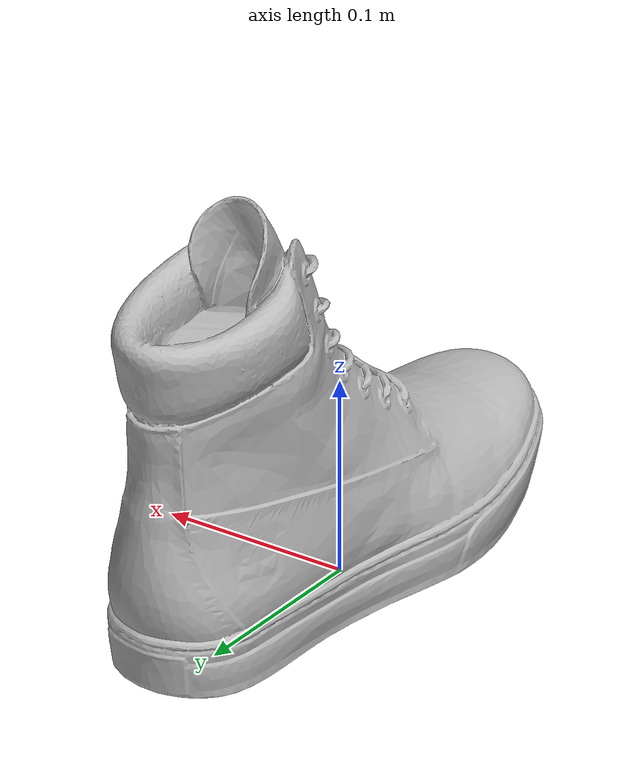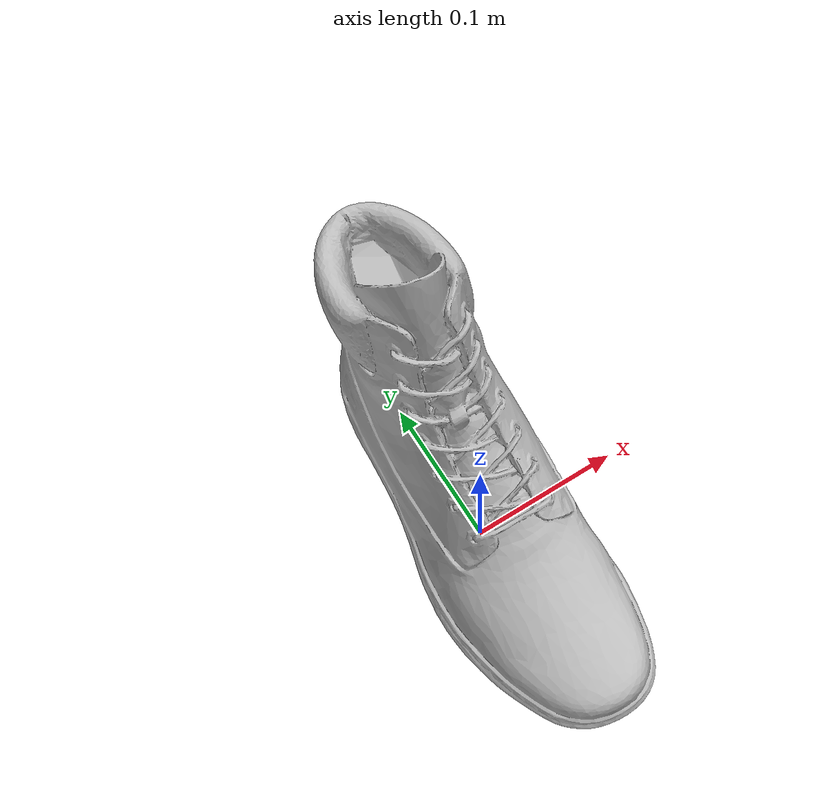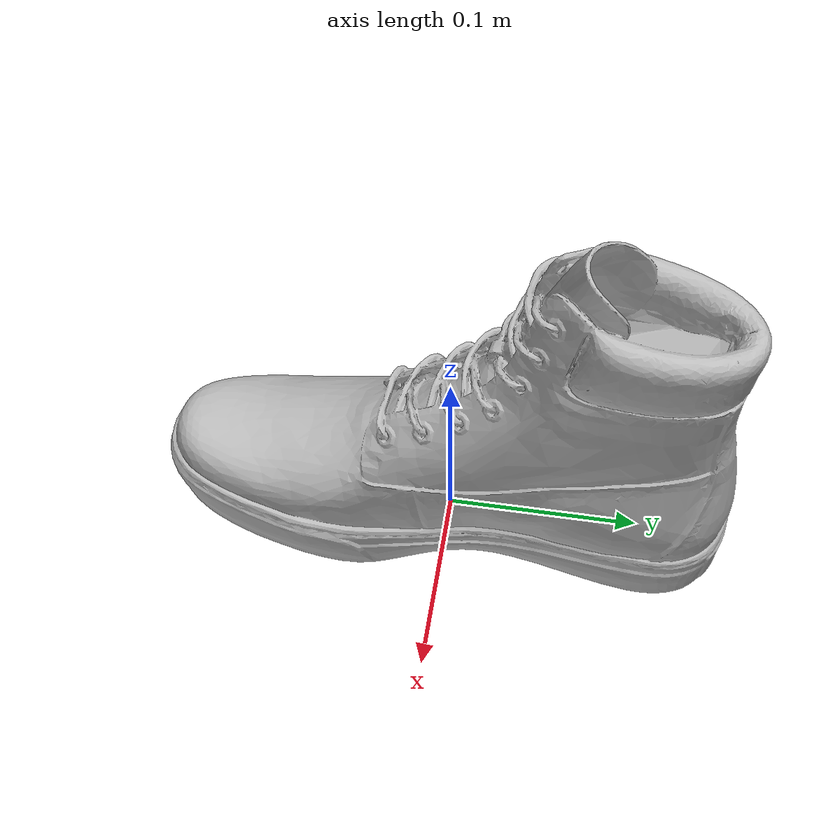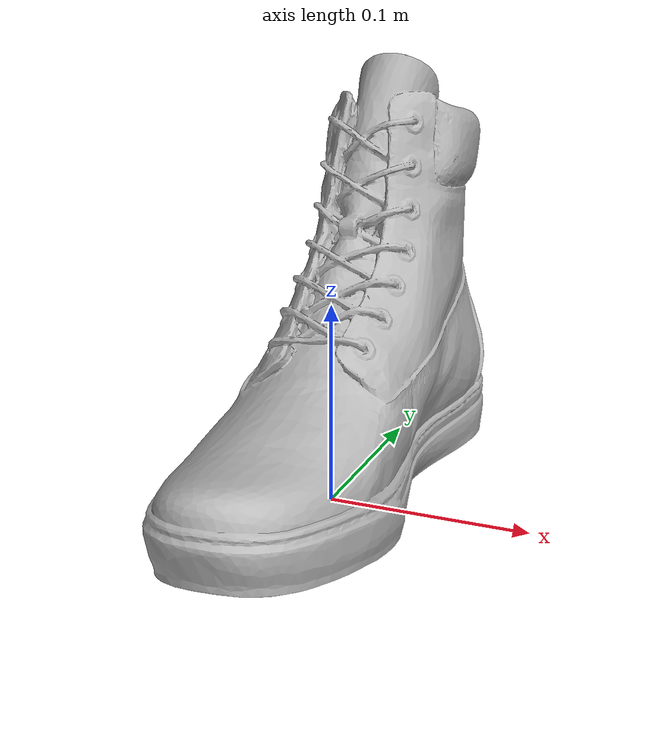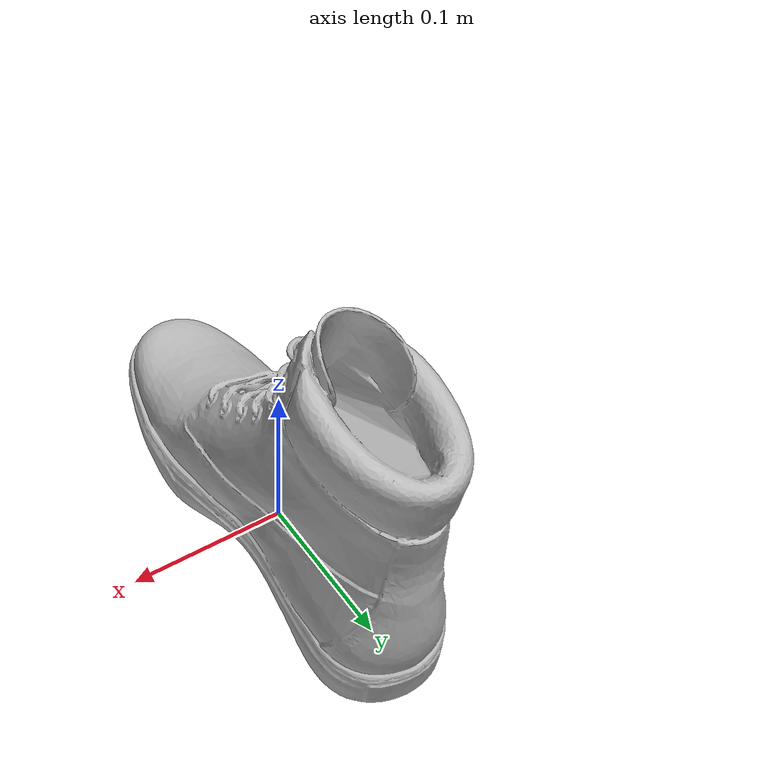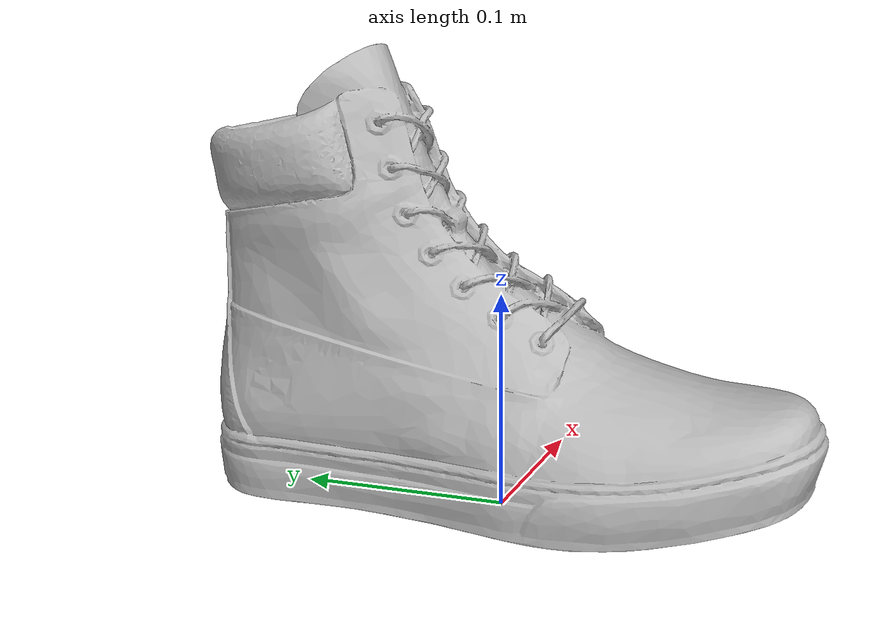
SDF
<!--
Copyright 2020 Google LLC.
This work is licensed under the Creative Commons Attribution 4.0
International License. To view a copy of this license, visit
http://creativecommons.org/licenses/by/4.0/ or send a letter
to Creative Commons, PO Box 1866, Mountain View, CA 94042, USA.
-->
<?xml version="1.0" ?>
<sdf version="1.6">
  <model name="Timberland_Mens_Earthkeepers_Newmarket_6Inch_Cupsole_Boot">
    <link name="link_0">
      <visual name="visual">
        <geometry>
          <mesh>
            <uri>meshes/model.obj</uri>
          </mesh>
        </geometry>
      </visual>
      <collision name="collision_0">
        <geometry>
          <mesh>
            <uri>meshes/model.obj</uri>
          </mesh>
        </geometry>
      </collision>
    </link>
  </model>
</sdf>
